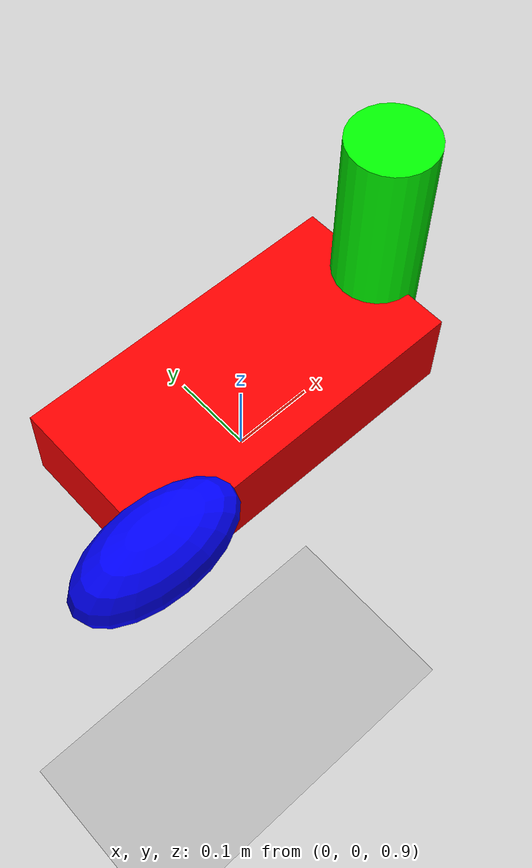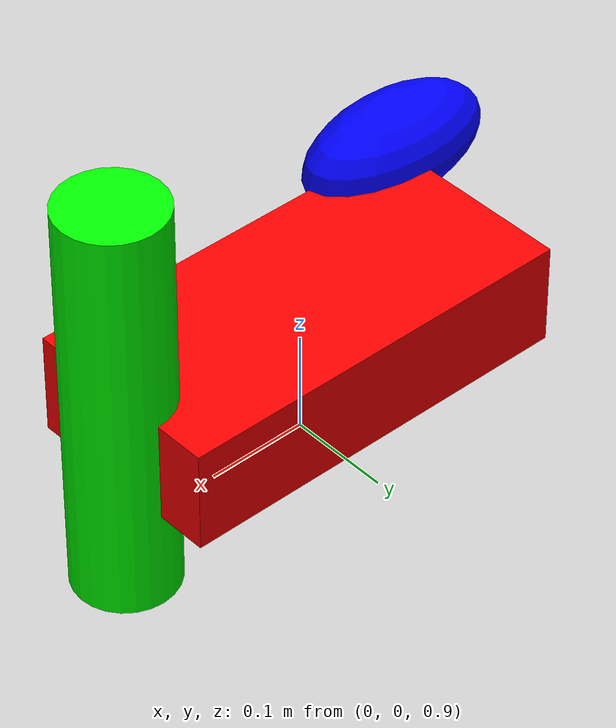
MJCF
<mujoco model="irregular_object">
    <compiler angle="radian"/>
    <option gravity="0 0 -9.81"/>  <!-- Standard gravity -->

    <worldbody>
        <!-- Ground Plane (to interact with the object) -->
        <geom name="ground" type="plane" pos="0 0 0" size="5 5 0.1"
              rgba="0.7 0.7 0.7 1" friction="1 1 1"/>

        <!-- Irregular Shape (Combination of multiple geoms) -->
        <body name="irregular_body" pos="0 0 1">  <!-- Positioned above the ground -->
            <joint type="hinge" axis="0 0 1"/>  <!-- Allows free rotation and movement -->

            <!-- Base Part of Irregular Object -->
            <geom name="part1" type="box" size="0.2 0.1 0.05" pos="0 0 0" density="500" rgba="1 0 0 1"/>

            <!-- Asymmetric Extension -->
            <geom name="part2" type="cylinder" size="0.05 0.2" pos="0.2 0 0.05" density="500" rgba="0 1 0 1"/>

            <!-- Another Asymmetric Part -->
            <geom name="part3" type="ellipsoid" size="0.1 0.05 0.05" pos="-0.2 -0.1 0.05" density="500" rgba="0 0 1 1"/>
        </body>
    </worldbody>
</mujoco>
